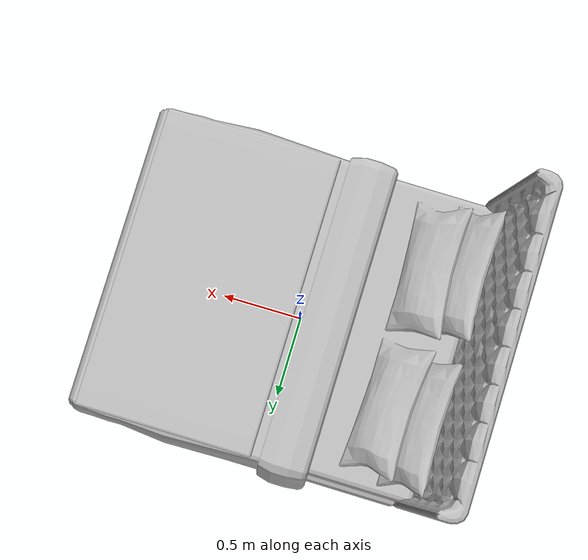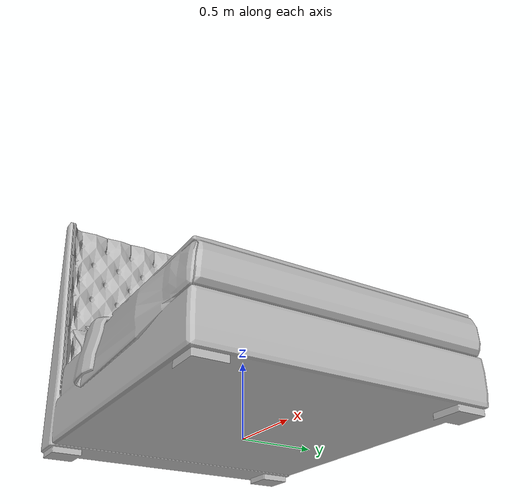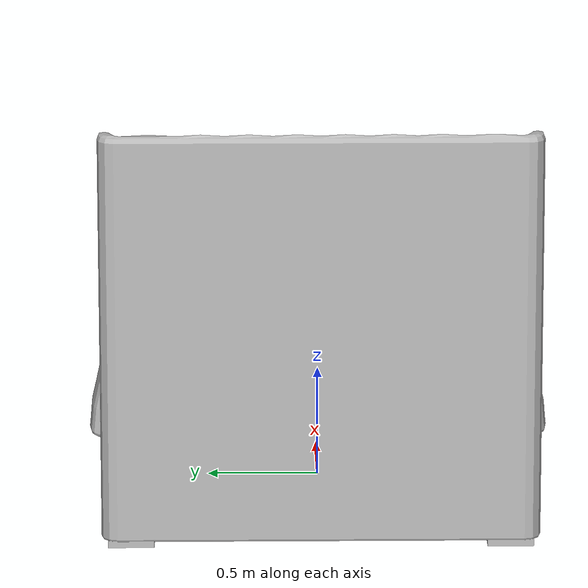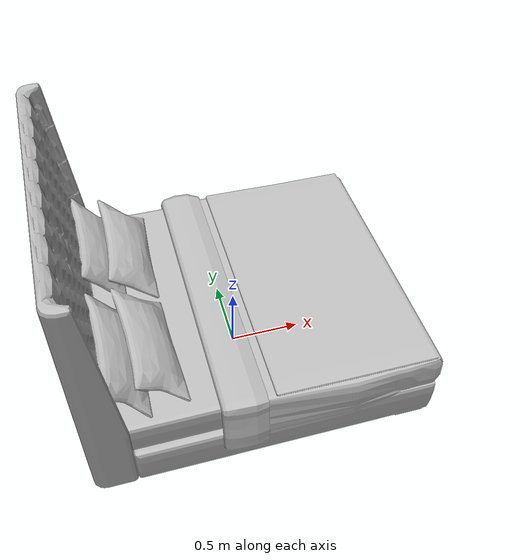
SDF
<?xml version='1.0'?>
<sdf version='1.4'>
  <model name='s__1842'>
    <pose>0 0 0 0 0 0</pose>
    <static>true</static>
    <link name='link'>
      <collision name='collision'>
        <pose>0 0 0 0 0 0</pose>
        <geometry>
          <box>
            <size>2.32 2.06 2</size>
          </box>
        </geometry>
      </collision>
      <visual name='visual'>
        <pose>0 0 0 0 0 0</pose>
        <geometry>
          <mesh><uri>model://s__1842/s__1842.dae</uri></mesh>
        </geometry>
      </visual>
    </link>
  </model>
</sdf>
